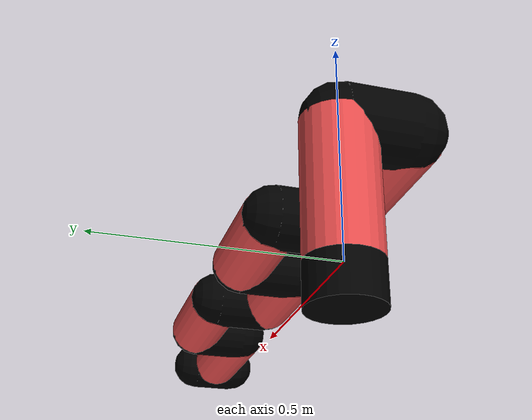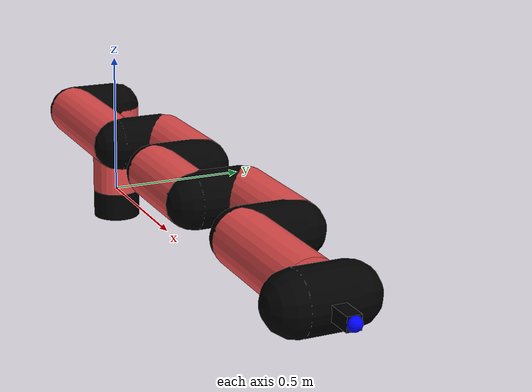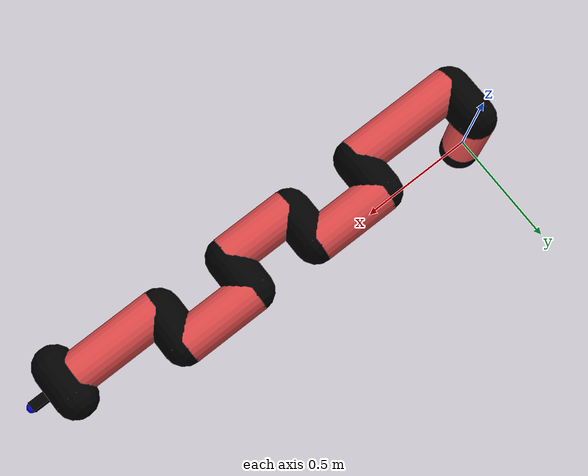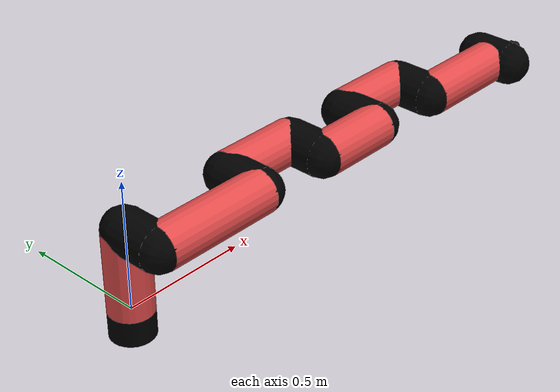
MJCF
<mujoco model="manipulator">
		<compiler angle="degree" coordinate="local" inertiafromgeom="auto" meshdir="meshes/"/>
		<option gravity="0 0 0" integrator="RK4" iterations="30" timestep="0.01"/>

		<default>
		<joint armature="1" limited="true" stiffness="10" damping="15" frictionloss="5.0"/>
		<geom conaffinity="1" condim="3" contype="1" friction=".5 .1 .1" margin="0.002"/>
		<motor ctrllimited="true"/>
		<position ctrllimited="true"/>
		</default>

		<asset>
		<texture builtin="gradient" height="100" rgb1="1.0 1.0 1.0" rgb2="1.0 1.0 1.0" type="skybox" width="100"/>
		<texture builtin="flat" height="32" name="arm_tex" rgb1="0.9 0.3 0.3" type="2d" width="32"/>
		<texture builtin="flat" height="32" name="gripper_tex" rgb1="0.0 0.0 0.0" type="cube" width="32"/>

		<material name="arm_mat" shininess="0.1" specular="0.1" texture="arm_tex"/>
		<material name="gripper_mat" shininess="1" specular="1" texture="gripper_tex"/>
		</asset>

		<worldbody>
		<light cutoff="45" diffuse=".8 .8 .8" dir="0 0.16 -1" directional="false" name="light" pos="0 -2.0 8.0" specular="0.3 0.3 0.3"/>

		<body name="base_link" pos="0 0 -0.1">
		<geom fromto="0 0 0 0 0 0.1" material="arm_mat" name="base_link" rgba="0.0 0.0 0.0 1" size="0.085" type="cylinder"/>
		</body>

		<body name="l1" pos="0 0 0">
<geom fromto="0 0 0 0 0 0.32" material="arm_mat" name="l1" rgba="0.9 0.3 0.3 1" size="0.085" type="cylinder"/>
<geom fromto="0 0 0.32 0 -0.16 0.32" material="arm_mat" name="l1_ex" rgba="0.0 0.0 0.0 1" size="0.085" type="capsule"/>
<joint axis="0 0 1" name="j1" pos="0 0 0" range="-90 90" damping="30.56" frictionloss="9.16"/>

<body name="l2" pos="0 -0.16 0.32">
<geom fromto="0 0 0 0.47 0 0" material="arm_mat" name="l2" rgba="0.9 0.3 0.3 1" size="0.085" type="cylinder"/>
<geom fromto="0.47 0 0 0.47 0.16 0" material="arm_mat" name="l2_ex" rgba="0.0 0.0 0.0 1" size="0.085" type="capsule"/>
<joint axis="0.0 1.0 0.0" name="j2" pos="0 0 0" range="-90 60" damping="28.67" frictionloss="9.43"/>

<body name="l3" pos="0.47 0.16 0">
<geom fromto="0 0 0 0.32 0 0" material="arm_mat" name="l3" rgba="0.9 0.3 0.3 1" size="0.085" type="cylinder"/>
<geom fromto="0.32 0 0 0.32 -0.16 0" material="arm_mat" name="l3_ex" rgba="0.0 0.0 0.0 1" size="0.085" type="capsule"/>
<joint axis="0.0 1.0 0.0" name="j3" pos="0 0 0" range="-30 60" damping="34.21" frictionloss="12.39"/>

<body name="l4" pos="0.32 -0.16 0">
<geom fromto="0 0 0 0.3 0 0" material="arm_mat" name="l4" rgba="0.9 0.3 0.3 1" size="0.085" type="cylinder"/>
<geom fromto="0.3 0 0 0.3 0.16 0" material="arm_mat" name="l4_ex" rgba="0.0 0.0 0.0 1" size="0.085" type="capsule"/>
<joint axis="0.0 1.0 0.0" name="j4" pos="0 0 0" range="-30 60" damping="34.42" frictionloss="10.84"/>

<body name="l5" pos="0.3 0.16 0">
<geom fromto="0 0 0 0.32 0 0" material="arm_mat" name="l5" rgba="0.9 0.3 0.3 1" size="0.085" type="cylinder"/>
<geom fromto="0.32 0 0 0.32 -0.16 0" material="arm_mat" name="l5_ex" rgba="0.0 0.0 0.0 1" size="0.085" type="capsule"/>
<joint axis="0.0 1.0 0.0" name="j5" pos="0 0 0" range="-30 60" damping="28.33" frictionloss="10.78"/>

<body name="l6" pos="0.32 -0.16 0">
<geom fromto="0 0 0 0.38 0 0" material="arm_mat" name="l6" rgba="0.9 0.3 0.3 1" size="0.085" type="cylinder"/>
<joint axis="0.0 1.0 0.0" name="j6" pos="0 0 0" range="-30 60" damping="35.08" frictionloss="12.08"/>

<body name="gripper" pos="0.38 0 0">
<geom fromto="0.05 -0.07 0 0.05 0.07 0" material="gripper_mat" name="gripper" rgba="0.0 0.0 0.0 1" size="0.085" type="capsule"/><joint axis="1 0 0" name="j7" pos="0 0 0" range="-90 90" damping="15" frictionloss="5.0"/><body name="finger" pos="0.1 0 0">
<geom fromto="0 0.0 0 0.1 0.0 0" material="gripper_mat" name="finger" rgba="0.0 0.0 0.0 1" size="0.020 0.06 0.06" type="box"/>
</body>
<site name="current" pos="0.2 0. 0.0" rgba="0. 0. 1.0 1" size="0.02" type="sphere"/>
</body>
</body>
</body>
</body>
</body>
</body>
</body>
</worldbody>
<actuator>
<motor ctrllimited="true" ctrlrange="-1.0 1.0" joint="j1" gear="56.17"/>
<motor ctrllimited="true" ctrlrange="-1.0 1.0" joint="j2" gear="97.34"/>
<motor ctrllimited="true" ctrlrange="-1.0 1.0" joint="j3" gear="91.94"/>
<motor ctrllimited="true" ctrlrange="-1.0 1.0" joint="j4" gear="87.14"/>
<motor ctrllimited="true" ctrlrange="-1.0 1.0" joint="j5" gear="86.42"/>
<motor ctrllimited="true" ctrlrange="-1.0 1.0" joint="j6" gear="92.84"/>
<motor ctrllimited="true" ctrlrange="-1.0 1.0" joint="j7" gear="80"/>
</actuator>
</mujoco>
